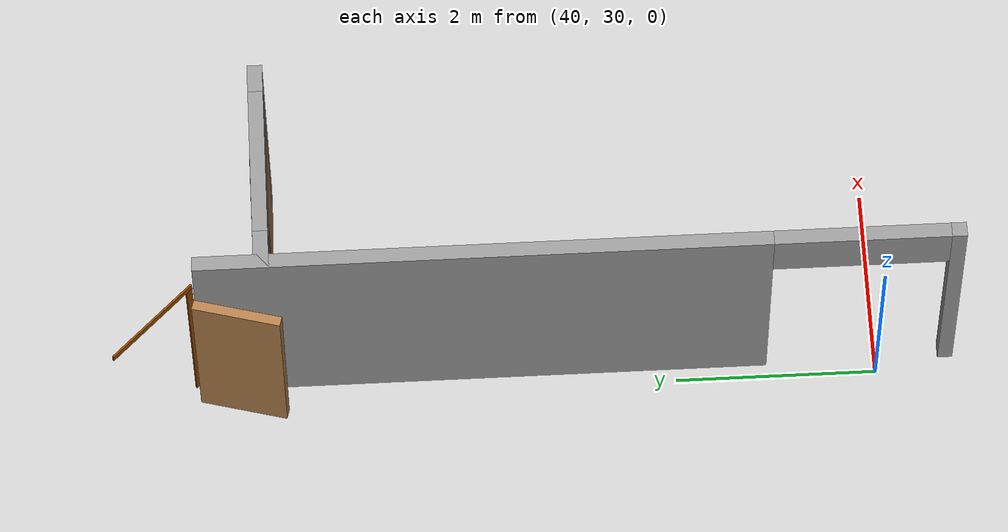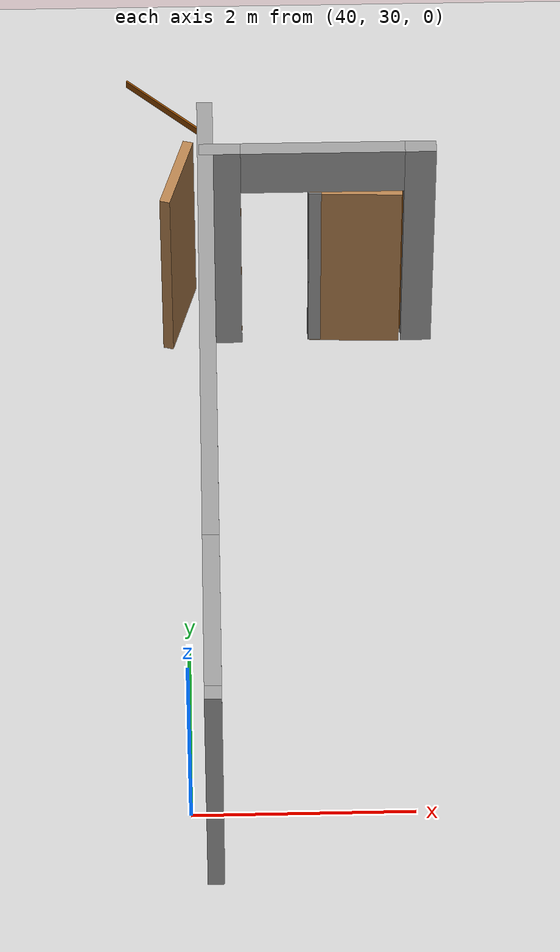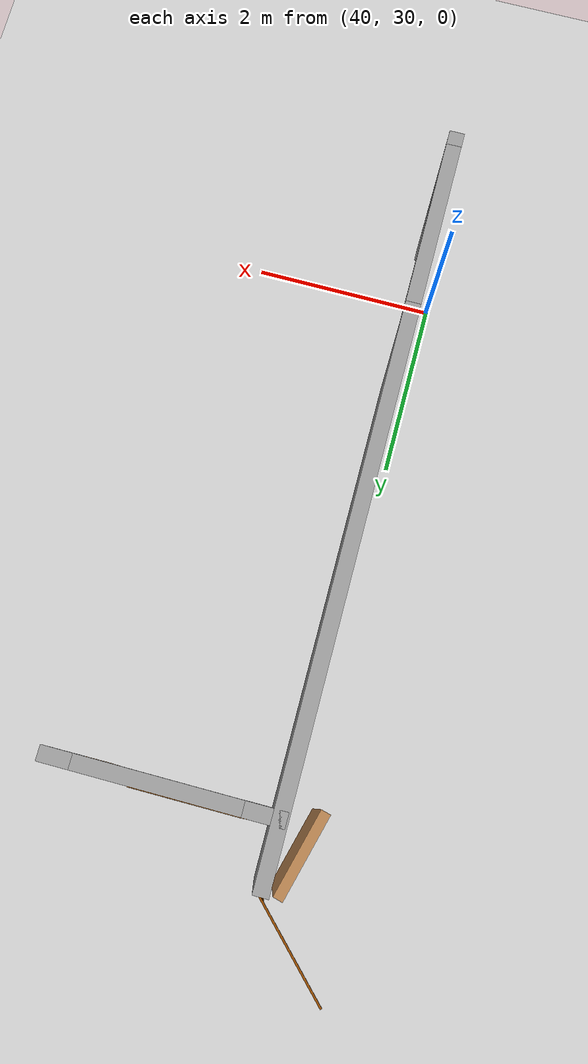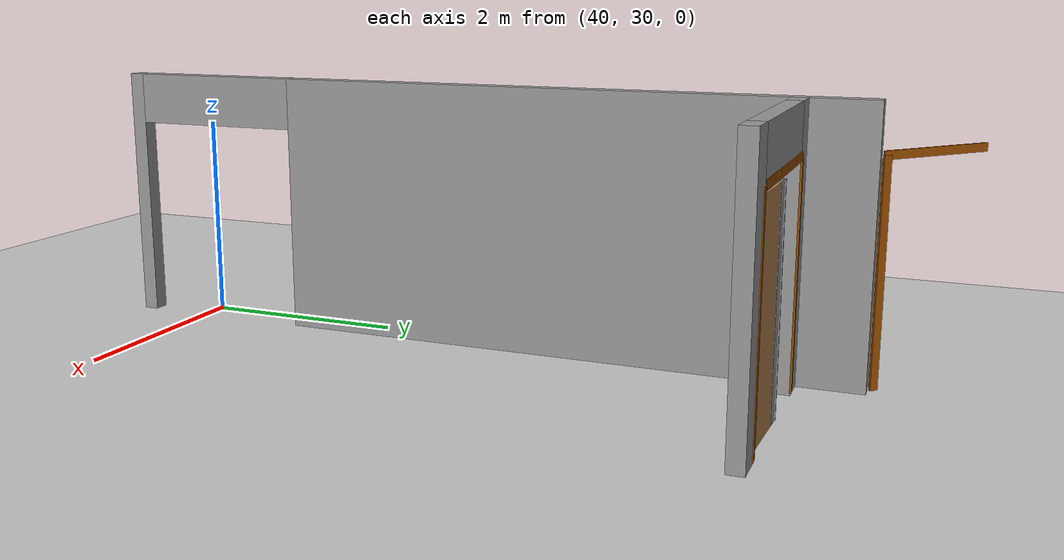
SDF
<sdf version="1.6">
 <world name="default">
  <model name="ground_plane">
   <static>1</static>
   <link name="link">
    <collision name="collision">
     <geometry><plane><normal>0 0 1</normal><size>100 100</size></plane></geometry>
     <surface><friction><ode><mu>100</mu><mu2>50</mu2></ode></friction></surface>
    </collision>
    <visual name="visual">
     <cast_shadows>0</cast_shadows>
     <geometry><plane><normal>0 0 1</normal><size>100 100</size></plane></geometry>
     <material>
      <script><uri>file://media/materials/scripts/gazebo.material</uri><name>Gazebo/Grey</name></script>
     </material>
    </visual>
   </link>
  </model>
  <model name="CVSSP">
   <pose>23.8714 24.094 0 0 -0 0</pose>
   <link name="Wall_228">
    <pose>17.4069 11.9566 0 0 -0 0</pose>
    <visual name="Wall_228_Visual_0">
     <pose>-0.929285 0 1.25 0 -0 0</pose>
     <geometry><box><size>0.391429 0.15 2.5</size></box></geometry>
     <material>
      <script><uri>file://media/materials/scripts/gazebo.material</uri><name>Gazebo/Grey</name></script>
      <ambient>0.588235 0.588235 0.588235 1</ambient>
     </material>
    </visual>
    <collision name="Wall_228_Collision_0">
     <geometry><box><size>0.391429 0.15 2.5</size></box></geometry>
     <pose>-0.929285 0 1.25 0 -0 0</pose>
    </collision>
    <visual name="Wall_228_Visual_1">
     <pose>0.97634 0 1.25 0 -0 0</pose>
     <geometry><box><size>0.297321 0.15 2.5</size></box></geometry>
     <material>
      <script><uri>file://media/materials/scripts/gazebo.material</uri><name>Gazebo/Grey</name></script>
      <ambient>0.588235 0.588235 0.588235 1</ambient>
     </material>
    </visual>
    <collision name="Wall_228_Collision_1">
     <geometry><box><size>0.297321 0.15 2.5</size></box></geometry>
     <pose>0.97634 0 1.25 0 -0 0</pose>
    </collision>
    <visual name="Wall_228_Visual_2">
     <pose>0.047054 0 2.25 0 -0 0</pose>
     <geometry><box><size>1.56125 0.15 0.5</size></box></geometry>
     <material>
      <script><uri>file://media/materials/scripts/gazebo.material</uri><name>Gazebo/Grey</name></script>
      <ambient>0.588235 0.588235 0.588235 1</ambient>
     </material>
    </visual>
    <collision name="Wall_228_Collision_2">
     <geometry><box><size>1.56125 0.15 0.5</size></box></geometry>
     <pose>0.047054 0 2.25 0 -0 0</pose>
    </collision>
   </link>
   <link name="Wall_6">
    <pose>16.34 8.87509 0 0 0 -1.5708</pose>
    <visual name="Wall_6_Visual_0">
     <pose>-0.935121 0 1.25 0 -0 0</pose>
     <geometry><box><size>5.62976 0.15 2.5</size></box></geometry>
     <material>
      <script><uri>file://media/materials/scripts/gazebo.material</uri><name>Gazebo/Grey</name></script>
      <ambient>0.588235 0.588235 0.588235 1</ambient>
     </material>
    </visual>
    <collision name="Wall_6_Collision_0">
     <geometry><box><size>5.62976 0.15 2.5</size></box></geometry>
     <pose>-0.935121 0 1.25 0 -0 0</pose>
    </collision>
    <visual name="Wall_6_Visual_1">
     <pose>3.6759 0 1.25 0 -0 0</pose>
     <geometry><box><size>0.148208 0.15 2.5</size></box></geometry>
     <material>
      <script><uri>file://media/materials/scripts/gazebo.material</uri><name>Gazebo/Grey</name></script>
      <ambient>0.588235 0.588235 0.588235 1</ambient>
     </material>
    </visual>
    <collision name="Wall_6_Collision_1">
     <geometry><box><size>0.148208 0.15 2.5</size></box></geometry>
     <pose>3.6759 0 1.25 0 -0 0</pose>
    </collision>
    <visual name="Wall_6_Visual_2">
     <pose>2.74078 0 2.25 0 -0 0</pose>
     <geometry><box><size>1.72203 0.15 0.5</size></box></geometry>
     <material>
      <script><uri>file://media/materials/scripts/gazebo.material</uri><name>Gazebo/Grey</name></script>
      <ambient>0.588235 0.588235 0.588235 1</ambient>
     </material>
    </visual>
    <collision name="Wall_6_Collision_2">
     <geometry><box><size>1.72203 0.15 0.5</size></box></geometry>
     <pose>2.74078 0 2.25 0 -0 0</pose>
    </collision>
   </link>
   <static>1</static>
  </model>
  <model name="basic_ply_door_corrected_clone_clone_clone_1">
   <link name="link">
    <pose>-0 0 1.00385 0 -0 0</pose>
    <inertial>
     <mass>0.5167</mass>
     <inertia>
      <ixx>0.00086117</ixx>
      <ixy>0</ixy>
      <ixz>0</ixz>
      <iyy>0.00086117</iyy>
      <iyz>0</iyz>
      <izz>0.00086117</izz>
     </inertia>
    </inertial>
    <gravity>0</gravity>
    <visual name="visual">
     <geometry><box><size>0.88 0.1 1.96</size></box></geometry>
     <material>
      <script><uri>file://media/materials/scripts/gazebo.material</uri><name>Gazebo/Wood</name></script>
      <shader type="pixel"><normal_map>__default__</normal_map></shader>
      <ambient>1 1 1 1</ambient>
      <diffuse>1 1 1 1</diffuse>
      <specular>0.2 0.2 0.2 1</specular>
      <emissive>0 0 0 1</emissive>
     </material>
    </visual>
    <collision name="collision">
     <geometry><box><size>0.88 0.1 1.96</size></box></geometry>
     <surface>
      <friction>
       <ode><mu>1</mu><mu2>1</mu2><fdir1>0 0 0</fdir1><slip1>0</slip1><slip2>0</slip2></ode>
       <torsional>
        <coefficient>1</coefficient>
        <patch_radius>0</patch_radius>
        <surface_radius>0.01</surface_radius>
        <use_patch_radius>0</use_patch_radius>
        <ode><slip>0</slip></ode>
       </torsional>
      </friction>
      <bounce><restitution_coefficient>0</restitution_coefficient><threshold>1e+06</threshold></bounce>
      <contact>
       <collide_without_contact>0</collide_without_contact>
       <collide_without_contact_bitmask>1</collide_without_contact_bitmask>
       <collide_bitmask>1</collide_bitmask>
       <ode>
        <soft_cfm>0</soft_cfm>
        <soft_erp>0.2</soft_erp>
        <kp>100000</kp>
        <kd>100</kd>
        <max_vel>100</max_vel>
        <min_depth>0.001</min_depth>
       </ode>
       <bullet>
        <split_impulse>1</split_impulse>
        <split_impulse_penetration_threshold>-0.01</split_impulse_penetration_threshold>
        <soft_cfm>0</soft_cfm>
        <soft_erp>0.2</soft_erp>
        <kp>100000</kp>
        <kd>100</kd>
       </bullet>
      </contact>
     </surface>
    </collision>
   </link>
   <static>1</static>
   <pose>41.6497 36.0398 -0.036806 0 0 -0.036583</pose>
  </model>
  <model name="metal_hinge">
   <link name="link">
    <inertial>
     <mass>1</mass>
     <inertia>
      <ixx>0.166667</ixx>
      <ixy>0</ixy>
      <ixz>0</ixz>
      <iyy>0.166667</iyy>
      <iyz>0</iyz>
      <izz>0.166667</izz>
     </inertia>
    </inertial>
    <visual name="visual">
     <geometry><box><size>0.018685 0.118108 1.95261</size></box></geometry>
     <material>
      <script><name>Gazebo/Grey</name><uri>file://media/materials/scripts/gazebo.material</uri></script>
      <shader type="pixel"/>
     </material>
    </visual>
    <collision name="collision">
     <geometry><box><size>0.018685 0.118108 1.95261</size></box></geometry>
     <surface>
      <friction>
       <ode><mu>1</mu><mu2>1</mu2><fdir1>0 0 0</fdir1><slip1>0</slip1><slip2>0</slip2></ode>
       <torsional>
        <coefficient>1</coefficient>
        <patch_radius>0</patch_radius>
        <surface_radius>0</surface_radius>
        <use_patch_radius>1</use_patch_radius>
        <ode><slip>0</slip></ode>
       </torsional>
      </friction>
      <bounce><restitution_coefficient>0</restitution_coefficient><threshold>1e+06</threshold></bounce>
      <contact>
       <collide_without_contact>0</collide_without_contact>
       <collide_without_contact_bitmask>1</collide_without_contact_bitmask>
       <collide_bitmask>1</collide_bitmask>
       <ode>
        <soft_cfm>0</soft_cfm>
        <soft_erp>0.2</soft_erp>
        <kp>1e+13</kp>
        <kd>1</kd>
        <max_vel>0.01</max_vel>
        <min_depth>0</min_depth>
       </ode>
       <bullet>
        <split_impulse>1</split_impulse>
        <split_impulse_penetration_threshold>-0.01</split_impulse_penetration_threshold>
        <soft_cfm>0</soft_cfm>
        <soft_erp>0.2</soft_erp>
        <kp>1e+13</kp>
        <kd>1</kd>
       </bullet>
      </contact>
     </surface>
    </collision>
   </link>
   <static>1</static>
   <pose>41.1991 36.0596 0.984523 0 -0 0</pose>
  </model>
  <model name="basic_ply_door_corrected_clone_0_clone_clone_1_clone">
   <link name="link">
    <pose>-0 0 1.00385 0 -0 0</pose>
    <inertial>
     <mass>0.5167</mass>
     <inertia>
      <ixx>0.00086117</ixx>
      <ixy>0</ixy>
      <ixz>0</ixz>
      <iyy>0.00086117</iyy>
      <iyz>0</iyz>
      <izz>0.00086117</izz>
     </inertia>
    </inertial>
    <gravity>0</gravity>
    <visual name="visual">
     <geometry><box><size>0.88 0.1 1.96</size></box></geometry>
     <material>
      <script><uri>file://media/materials/scripts/gazebo.material</uri><name>Gazebo/Wood</name></script>
      <shader type="pixel"><normal_map>__default__</normal_map></shader>
      <ambient>1 1 1 1</ambient>
      <diffuse>1 1 1 1</diffuse>
      <specular>0.2 0.2 0.2 1</specular>
      <emissive>0 0 0 1</emissive>
     </material>
    </visual>
    <collision name="collision">
     <geometry><box><size>0.88 0.1 1.96</size></box></geometry>
     <surface>
      <friction>
       <ode><mu>1</mu><mu2>1</mu2><fdir1>0 0 0</fdir1><slip1>0</slip1><slip2>0</slip2></ode>
       <torsional>
        <coefficient>1</coefficient>
        <patch_radius>0</patch_radius>
        <surface_radius>0.01</surface_radius>
        <use_patch_radius>0</use_patch_radius>
        <ode><slip>0</slip></ode>
       </torsional>
      </friction>
      <bounce><restitution_coefficient>0</restitution_coefficient><threshold>1e+06</threshold></bounce>
      <contact>
       <collide_without_contact>0</collide_without_contact>
       <collide_without_contact_bitmask>1</collide_without_contact_bitmask>
       <collide_bitmask>1</collide_bitmask>
       <ode>
        <soft_cfm>0</soft_cfm>
        <soft_erp>0.2</soft_erp>
        <kp>100000</kp>
        <kd>100</kd>
        <max_vel>100</max_vel>
        <min_depth>0.001</min_depth>
       </ode>
       <bullet>
        <split_impulse>1</split_impulse>
        <split_impulse_penetration_threshold>-0.01</split_impulse_penetration_threshold>
        <soft_cfm>0</soft_cfm>
        <soft_erp>0.2</soft_erp>
        <kp>100000</kp>
        <kd>100</kd>
       </bullet>
      </contact>
     </surface>
    </collision>
   </link>
   <static>1</static>
   <pose>39.9328 36.3122 -0.00101 0 0 -1.83483</pose>
  </model>
  <model name="metal_hinge_clone_2">
   <link name="link">
    <inertial>
     <mass>1</mass>
     <inertia>
      <ixx>0.166667</ixx>
      <ixy>0</ixy>
      <ixz>0</ixz>
      <iyy>0.166667</iyy>
      <iyz>0</iyz>
      <izz>0.166667</izz>
     </inertia>
    </inertial>
    <visual name="visual">
     <geometry><box><size>0.018685 0.118108 1.95261</size></box></geometry>
     <material>
      <script><name>Gazebo/Grey</name><uri>file://media/materials/scripts/gazebo.material</uri></script>
      <shader type="pixel"/>
     </material>
    </visual>
    <collision name="collision">
     <geometry><box><size>0.018685 0.118108 1.95261</size></box></geometry>
     <surface>
      <friction>
       <ode><mu>1</mu><mu2>1</mu2><fdir1>0 0 0</fdir1><slip1>0</slip1><slip2>0</slip2></ode>
       <torsional>
        <coefficient>1</coefficient>
        <patch_radius>0</patch_radius>
        <surface_radius>0</surface_radius>
        <use_patch_radius>1</use_patch_radius>
        <ode><slip>0</slip></ode>
       </torsional>
      </friction>
      <bounce><restitution_coefficient>0</restitution_coefficient><threshold>1e+06</threshold></bounce>
      <contact>
       <collide_without_contact>0</collide_without_contact>
       <collide_without_contact_bitmask>1</collide_without_contact_bitmask>
       <collide_bitmask>1</collide_bitmask>
       <ode>
        <soft_cfm>0</soft_cfm>
        <soft_erp>0.2</soft_erp>
        <kp>1e+13</kp>
        <kd>1</kd>
        <max_vel>0.01</max_vel>
        <min_depth>0</min_depth>
       </ode>
       <bullet>
        <split_impulse>1</split_impulse>
        <split_impulse_penetration_threshold>-0.01</split_impulse_penetration_threshold>
        <soft_cfm>0</soft_cfm>
        <soft_erp>0.2</soft_erp>
        <kp>1e+13</kp>
        <kd>1</kd>
       </bullet>
      </contact>
     </surface>
    </collision>
   </link>
   <static>1</static>
   <pose>41.2718 36.0987 0.984523 0 0 -1.58649</pose>
  </model>
  <model name="metal_hinge_clone_2_clone">
   <link name="link">
    <inertial>
     <mass>1</mass>
     <inertia>
      <ixx>0.166667</ixx>
      <ixy>0</ixy>
      <ixz>0</ixz>
      <iyy>0.166667</iyy>
      <iyz>0</iyz>
      <izz>0.166667</izz>
     </inertia>
    </inertial>
    <visual name="visual">
     <geometry><box><size>0.018685 0.118108 1.95261</size></box></geometry>
     <material>
      <script><name>Gazebo/Grey</name><uri>file://media/materials/scripts/gazebo.material</uri></script>
      <shader type="pixel"/>
     </material>
    </visual>
    <collision name="collision">
     <geometry><box><size>0.018685 0.118108 1.95261</size></box></geometry>
     <surface>
      <friction>
       <ode><mu>1</mu><mu2>1</mu2><fdir1>0 0 0</fdir1><slip1>0</slip1><slip2>0</slip2></ode>
       <torsional>
        <coefficient>1</coefficient>
        <patch_radius>0</patch_radius>
        <surface_radius>0</surface_radius>
        <use_patch_radius>1</use_patch_radius>
        <ode><slip>0</slip></ode>
       </torsional>
      </friction>
      <bounce><restitution_coefficient>0</restitution_coefficient><threshold>1e+06</threshold></bounce>
      <contact>
       <collide_without_contact>0</collide_without_contact>
       <collide_without_contact_bitmask>1</collide_without_contact_bitmask>
       <collide_bitmask>1</collide_bitmask>
       <ode>
        <soft_cfm>0</soft_cfm>
        <soft_erp>0.2</soft_erp>
        <kp>1e+13</kp>
        <kd>1</kd>
        <max_vel>0.01</max_vel>
        <min_depth>0</min_depth>
       </ode>
       <bullet>
        <split_impulse>1</split_impulse>
        <split_impulse_penetration_threshold>-0.01</split_impulse_penetration_threshold>
        <soft_cfm>0</soft_cfm>
        <soft_erp>0.2</soft_erp>
        <kp>1e+13</kp>
        <kd>1</kd>
       </bullet>
      </contact>
     </surface>
    </collision>
   </link>
   <static>1</static>
   <pose>41.2559 36.0028 0.984523 0 0 -1.58649</pose>
  </model>
  <model name="oak_frame_0_clone_0_clone_8">
   <link name="link">
    <inertial>
     <mass>1</mass>
     <inertia>
      <ixx>0.166667</ixx>
      <ixy>0</ixy>
      <ixz>0</ixz>
      <iyy>0.166667</iyy>
      <iyz>0</iyz>
      <izz>0.166667</izz>
     </inertia>
    </inertial>
    <visual name="visual">
     <geometry><box><size>0.018685 0.076446 1.08038</size></box></geometry>
     <material>
      <script><name>Gazebo/Grey</name><uri>file://media/materials/scripts/gazebo.material</uri></script>
      <shader type="pixel"><normal_map>__default__</normal_map></shader>
      <diffuse>0.58 0.29 0 0</diffuse>
      <ambient>0.58 0.29 0 1</ambient>
      <specular>0.01 0.01 0.01 1</specular>
      <emissive>0 0 0 1</emissive>
     </material>
    </visual>
    <collision name="collision">
     <geometry><box><size>0.018685 0.076446 1.08038</size></box></geometry>
     <surface>
      <friction>
       <ode><mu>1</mu><mu2>1</mu2><fdir1>0 0 0</fdir1><slip1>0</slip1><slip2>0</slip2></ode>
       <torsional>
        <coefficient>1</coefficient>
        <patch_radius>0</patch_radius>
        <surface_radius>0</surface_radius>
        <use_patch_radius>1</use_patch_radius>
        <ode><slip>0</slip></ode>
       </torsional>
      </friction>
      <bounce><restitution_coefficient>0</restitution_coefficient><threshold>1e+06</threshold></bounce>
      <contact>
       <collide_without_contact>0</collide_without_contact>
       <collide_without_contact_bitmask>1</collide_without_contact_bitmask>
       <collide_bitmask>1</collide_bitmask>
       <ode>
        <soft_cfm>0</soft_cfm>
        <soft_erp>0.2</soft_erp>
        <kp>1e+13</kp>
        <kd>1</kd>
        <max_vel>0.01</max_vel>
        <min_depth>0</min_depth>
       </ode>
       <bullet>
        <split_impulse>1</split_impulse>
        <split_impulse_penetration_threshold>-0.01</split_impulse_penetration_threshold>
        <soft_cfm>0</soft_cfm>
        <soft_erp>0.2</soft_erp>
        <kp>1e+13</kp>
        <kd>1</kd>
       </bullet>
      </contact>
     </surface>
    </collision>
   </link>
   <static>1</static>
   <pose>41.077 36.1293 2.05002 -1.57076 0.018436 -1.56859</pose>
  </model>
  <model name="oak_frame_0_clone_0_clone_8_clone">
   <link name="link">
    <inertial>
     <mass>1</mass>
     <inertia>
      <ixx>0.166667</ixx>
      <ixy>0</ixy>
      <ixz>0</ixz>
      <iyy>0.166667</iyy>
      <iyz>0</iyz>
      <izz>0.166667</izz>
     </inertia>
    </inertial>
    <visual name="visual">
     <geometry><box><size>0.018685 0.076446 1.08038</size></box></geometry>
     <material>
      <script><name>Gazebo/Grey</name><uri>file://media/materials/scripts/gazebo.material</uri></script>
      <shader type="pixel"><normal_map>__default__</normal_map></shader>
      <diffuse>0.58 0.29 0 0</diffuse>
      <ambient>0.58 0.29 0 1</ambient>
      <specular>0.01 0.01 0.01 1</specular>
      <emissive>0 0 0 1</emissive>
     </material>
    </visual>
    <collision name="collision">
     <geometry><box><size>0.018685 0.076446 1.08038</size></box></geometry>
     <surface>
      <friction>
       <ode><mu>1</mu><mu2>1</mu2><fdir1>0 0 0</fdir1><slip1>0</slip1><slip2>0</slip2></ode>
       <torsional>
        <coefficient>1</coefficient>
        <patch_radius>0</patch_radius>
        <surface_radius>0</surface_radius>
        <use_patch_radius>1</use_patch_radius>
        <ode><slip>0</slip></ode>
       </torsional>
      </friction>
      <bounce><restitution_coefficient>0</restitution_coefficient><threshold>1e+06</threshold></bounce>
      <contact>
       <collide_without_contact>0</collide_without_contact>
       <collide_without_contact_bitmask>1</collide_without_contact_bitmask>
       <collide_bitmask>1</collide_bitmask>
       <ode>
        <soft_cfm>0</soft_cfm>
        <soft_erp>0.2</soft_erp>
        <kp>1e+13</kp>
        <kd>1</kd>
        <max_vel>0.01</max_vel>
        <min_depth>0</min_depth>
       </ode>
       <bullet>
        <split_impulse>1</split_impulse>
        <split_impulse_penetration_threshold>-0.01</split_impulse_penetration_threshold>
        <soft_cfm>0</soft_cfm>
        <soft_erp>0.2</soft_erp>
        <kp>1e+13</kp>
        <kd>1</kd>
       </bullet>
      </contact>
     </surface>
    </collision>
   </link>
   <static>1</static>
   <pose>41.5564 36.1208 2.05002 -1.57076 0.018436 -1.56859</pose>
  </model>
  <model name="oak_frame_0_clone_clone_7_clone">
   <link name="link">
    <inertial>
     <mass>1</mass>
     <inertia>
      <ixx>0.166667</ixx>
      <ixy>0</ixy>
      <ixz>0</ixz>
      <iyy>0.166667</iyy>
      <iyz>0</iyz>
      <izz>0.166667</izz>
     </inertia>
    </inertial>
    <visual name="visual">
     <geometry><box><size>0.018685 0.076446 2.026</size></box></geometry>
     <material>
      <script><name>Gazebo/Grey</name><uri>file://media/materials/scripts/gazebo.material</uri></script>
      <shader type="pixel"><normal_map>__default__</normal_map></shader>
      <diffuse>0.58 0.29 0 0</diffuse>
      <ambient>0.58 0.29 0 1</ambient>
      <specular>0.01 0.01 0.01 1</specular>
      <emissive>0 0 0 1</emissive>
     </material>
    </visual>
    <collision name="collision">
     <geometry><box><size>0.018685 0.076446 2.026</size></box></geometry>
     <surface>
      <friction>
       <ode><mu>1</mu><mu2>1</mu2><fdir1>0 0 0</fdir1><slip1>0</slip1><slip2>0</slip2></ode>
       <torsional>
        <coefficient>1</coefficient>
        <patch_radius>0</patch_radius>
        <surface_radius>0</surface_radius>
        <use_patch_radius>1</use_patch_radius>
        <ode><slip>0</slip></ode>
       </torsional>
      </friction>
      <bounce><restitution_coefficient>0</restitution_coefficient><threshold>1e+06</threshold></bounce>
      <contact>
       <collide_without_contact>0</collide_without_contact>
       <collide_without_contact_bitmask>1</collide_without_contact_bitmask>
       <collide_bitmask>1</collide_bitmask>
       <ode>
        <soft_cfm>0</soft_cfm>
        <soft_erp>0.2</soft_erp>
        <kp>1e+13</kp>
        <kd>1</kd>
        <max_vel>0.01</max_vel>
        <min_depth>0</min_depth>
       </ode>
       <bullet>
        <split_impulse>1</split_impulse>
        <split_impulse_penetration_threshold>-0.01</split_impulse_penetration_threshold>
        <soft_cfm>0</soft_cfm>
        <soft_erp>0.2</soft_erp>
        <kp>1e+13</kp>
        <kd>1</kd>
       </bullet>
      </contact>
     </surface>
    </collision>
   </link>
   <static>1</static>
   <pose>40.5079 36.1246 1.03242 0 -0 1.64784</pose>
  </model>
  <model name="oak_frame_0_clone_clone_7_clone_clone">
   <link name="link">
    <inertial>
     <mass>1</mass>
     <inertia>
      <ixx>0.166667</ixx>
      <ixy>0</ixy>
      <ixz>0</ixz>
      <iyy>0.166667</iyy>
      <iyz>0</iyz>
      <izz>0.166667</izz>
     </inertia>
    </inertial>
    <visual name="visual">
     <geometry><box><size>0.018685 0.076446 2.026</size></box></geometry>
     <material>
      <script><name>Gazebo/Grey</name><uri>file://media/materials/scripts/gazebo.material</uri></script>
      <shader type="pixel"><normal_map>__default__</normal_map></shader>
      <diffuse>0.58 0.29 0 0</diffuse>
      <ambient>0.58 0.29 0 1</ambient>
      <specular>0.01 0.01 0.01 1</specular>
      <emissive>0 0 0 1</emissive>
     </material>
    </visual>
    <collision name="collision">
     <geometry><box><size>0.018685 0.076446 2.026</size></box></geometry>
     <surface>
      <friction>
       <ode><mu>1</mu><mu2>1</mu2><fdir1>0 0 0</fdir1><slip1>0</slip1><slip2>0</slip2></ode>
       <torsional>
        <coefficient>1</coefficient>
        <patch_radius>0</patch_radius>
        <surface_radius>0</surface_radius>
        <use_patch_radius>1</use_patch_radius>
        <ode><slip>0</slip></ode>
       </torsional>
      </friction>
      <bounce><restitution_coefficient>0</restitution_coefficient><threshold>1e+06</threshold></bounce>
      <contact>
       <collide_without_contact>0</collide_without_contact>
       <collide_without_contact_bitmask>1</collide_without_contact_bitmask>
       <collide_bitmask>1</collide_bitmask>
       <ode>
        <soft_cfm>0</soft_cfm>
        <soft_erp>0.2</soft_erp>
        <kp>1e+13</kp>
        <kd>1</kd>
        <max_vel>0.01</max_vel>
        <min_depth>0</min_depth>
       </ode>
       <bullet>
        <split_impulse>1</split_impulse>
        <split_impulse_penetration_threshold>-0.01</split_impulse_penetration_threshold>
        <soft_cfm>0</soft_cfm>
        <soft_erp>0.2</soft_erp>
        <kp>1e+13</kp>
        <kd>1</kd>
       </bullet>
      </contact>
     </surface>
    </collision>
   </link>
   <static>1</static>
   <pose>42.1216 36.1221 1.03242 0 -0 1.64784</pose>
  </model>
  <model name="oak_frame_0_clone_clone_7_clone_clone_0_clone">
   <link name="link">
    <inertial>
     <mass>1</mass>
     <inertia>
      <ixx>0.166667</ixx>
      <ixy>0</ixy>
      <ixz>0</ixz>
      <iyy>0.166667</iyy>
      <iyz>0</iyz>
      <izz>0.166667</izz>
     </inertia>
    </inertial>
    <visual name="visual">
     <geometry><box><size>0.018685 0.076446 2.026</size></box></geometry>
     <material>
      <script><name>Gazebo/Grey</name><uri>file://media/materials/scripts/gazebo.material</uri></script>
      <shader type="pixel"><normal_map>__default__</normal_map></shader>
      <diffuse>0.58 0.29 0 0</diffuse>
      <ambient>0.58 0.29 0 1</ambient>
      <specular>0.01 0.01 0.01 1</specular>
      <emissive>0 0 0 1</emissive>
     </material>
    </visual>
    <collision name="collision">
     <geometry><box><size>0.018685 0.076446 2.026</size></box></geometry>
     <surface>
      <friction>
       <ode><mu>1</mu><mu2>1</mu2><fdir1>0 0 0</fdir1><slip1>0</slip1><slip2>0</slip2></ode>
       <torsional>
        <coefficient>1</coefficient>
        <patch_radius>0</patch_radius>
        <surface_radius>0</surface_radius>
        <use_patch_radius>1</use_patch_radius>
        <ode><slip>0</slip></ode>
       </torsional>
      </friction>
      <bounce><restitution_coefficient>0</restitution_coefficient><threshold>1e+06</threshold></bounce>
      <contact>
       <collide_without_contact>0</collide_without_contact>
       <collide_without_contact_bitmask>1</collide_without_contact_bitmask>
       <collide_bitmask>1</collide_bitmask>
       <ode>
        <soft_cfm>0</soft_cfm>
        <soft_erp>0.2</soft_erp>
        <kp>1e+13</kp>
        <kd>1</kd>
        <max_vel>0.01</max_vel>
        <min_depth>0</min_depth>
       </ode>
       <bullet>
        <split_impulse>1</split_impulse>
        <split_impulse_penetration_threshold>-0.01</split_impulse_penetration_threshold>
        <soft_cfm>0</soft_cfm>
        <soft_erp>0.2</soft_erp>
        <kp>1e+13</kp>
        <kd>1</kd>
       </bullet>
      </contact>
     </surface>
    </collision>
   </link>
   <static>1</static>
   <pose>40.1927 36.7686 1.03242 0 -0 0.782752</pose>
  </model>
  <model name="oak_frame_0_clone_0_clone_8_clone_0_clone_clone">
   <link name="link">
    <inertial>
     <mass>1</mass>
     <inertia>
      <ixx>0.166667</ixx>
      <ixy>0</ixy>
      <ixz>0</ixz>
      <iyy>0.166667</iyy>
      <iyz>0</iyz>
      <izz>0.166667</izz>
     </inertia>
    </inertial>
    <visual name="visual">
     <geometry><box><size>0.018685 0.076446 1.08038</size></box></geometry>
     <material>
      <script><name>Gazebo/Grey</name><uri>file://media/materials/scripts/gazebo.material</uri></script>
      <shader type="pixel"><normal_map>__default__</normal_map></shader>
      <diffuse>0.58 0.29 0 0</diffuse>
      <ambient>0.58 0.29 0 1</ambient>
      <specular>0.01 0.01 0.01 1</specular>
      <emissive>0 0 0 1</emissive>
     </material>
    </visual>
    <collision name="collision">
     <geometry><box><size>0.018685 0.076446 1.08038</size></box></geometry>
     <surface>
      <friction>
       <ode><mu>1</mu><mu2>1</mu2><fdir1>0 0 0</fdir1><slip1>0</slip1><slip2>0</slip2></ode>
       <torsional>
        <coefficient>1</coefficient>
        <patch_radius>0</patch_radius>
        <surface_radius>0</surface_radius>
        <use_patch_radius>1</use_patch_radius>
        <ode><slip>0</slip></ode>
       </torsional>
      </friction>
      <bounce><restitution_coefficient>0</restitution_coefficient><threshold>1e+06</threshold></bounce>
      <contact>
       <collide_without_contact>0</collide_without_contact>
       <collide_without_contact_bitmask>1</collide_without_contact_bitmask>
       <collide_bitmask>1</collide_bitmask>
       <ode>
        <soft_cfm>0</soft_cfm>
        <soft_erp>0.2</soft_erp>
        <kp>1e+13</kp>
        <kd>1</kd>
        <max_vel>0.01</max_vel>
        <min_depth>0</min_depth>
       </ode>
       <bullet>
        <split_impulse>1</split_impulse>
        <split_impulse_penetration_threshold>-0.01</split_impulse_penetration_threshold>
        <soft_cfm>0</soft_cfm>
        <soft_erp>0.2</soft_erp>
        <kp>1e+13</kp>
        <kd>1</kd>
       </bullet>
      </contact>
     </surface>
    </collision>
   </link>
   <static>1</static>
   <pose>39.8358 37.1274 2.05052 -1.58389 0.01298 -2.3603</pose>
  </model>
 </world>
</sdf>
